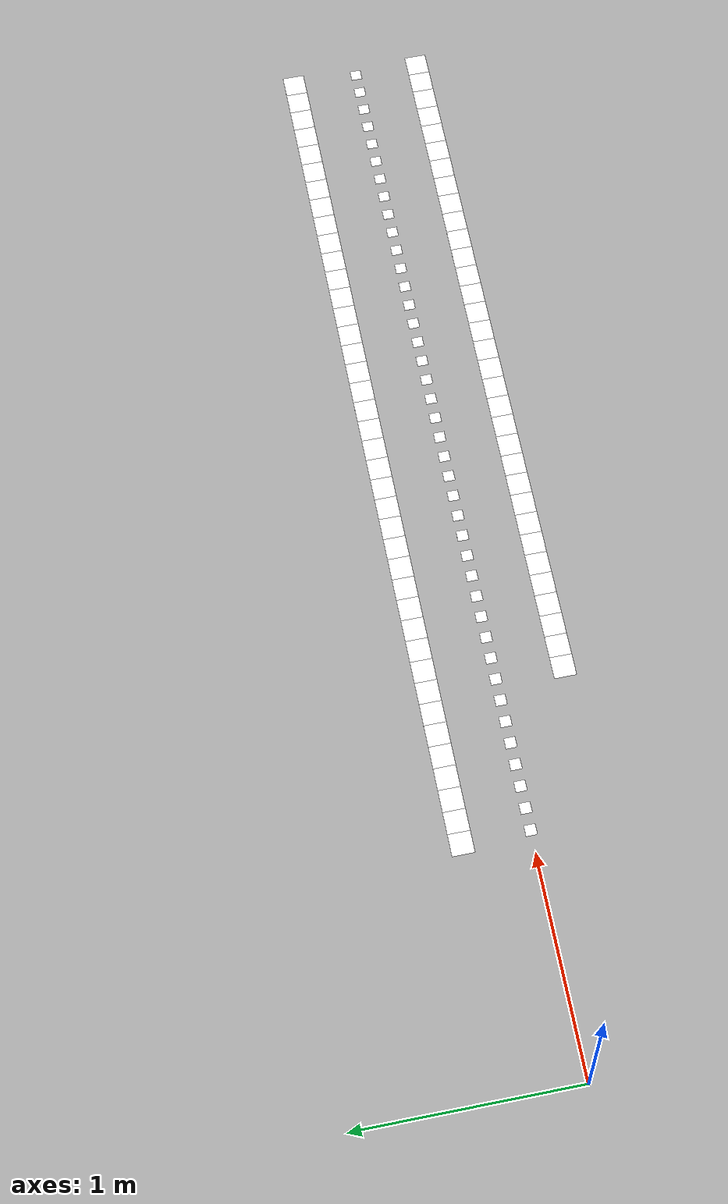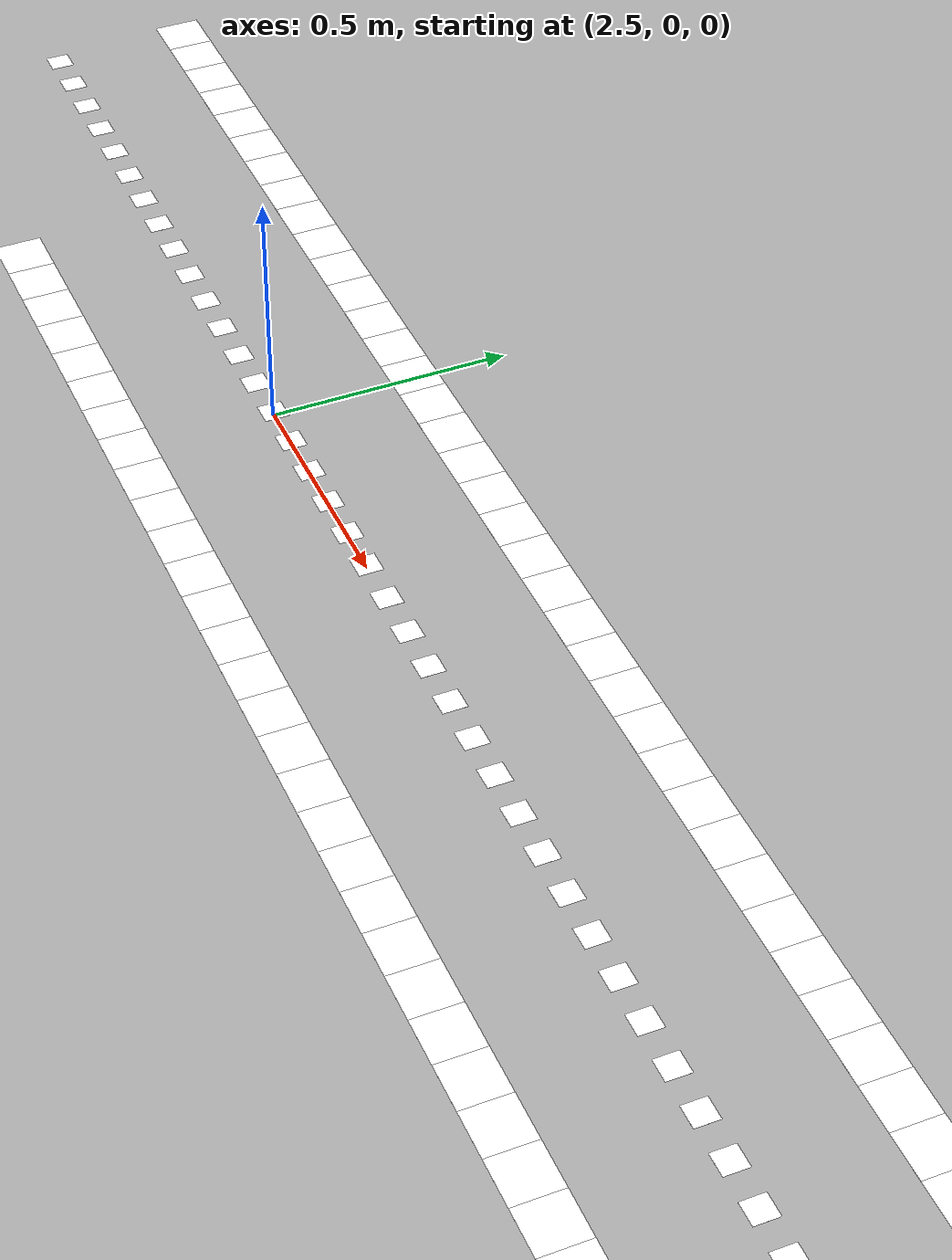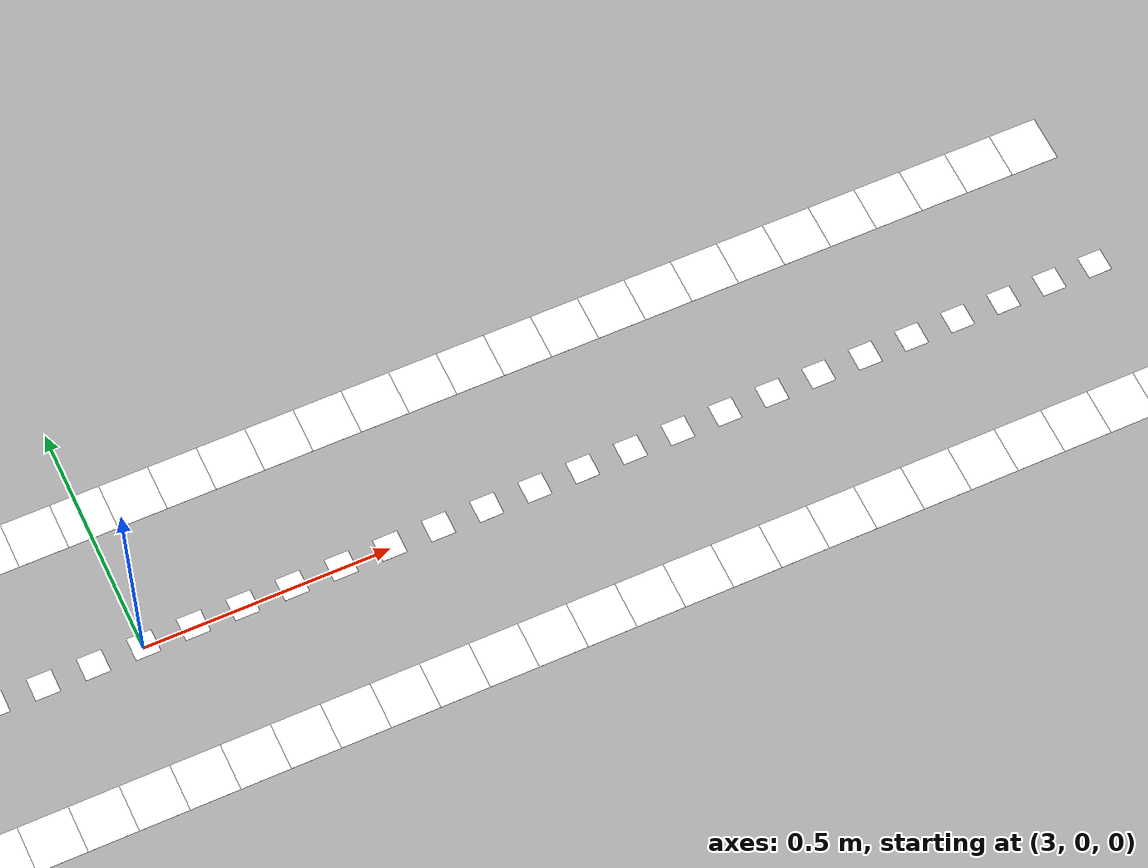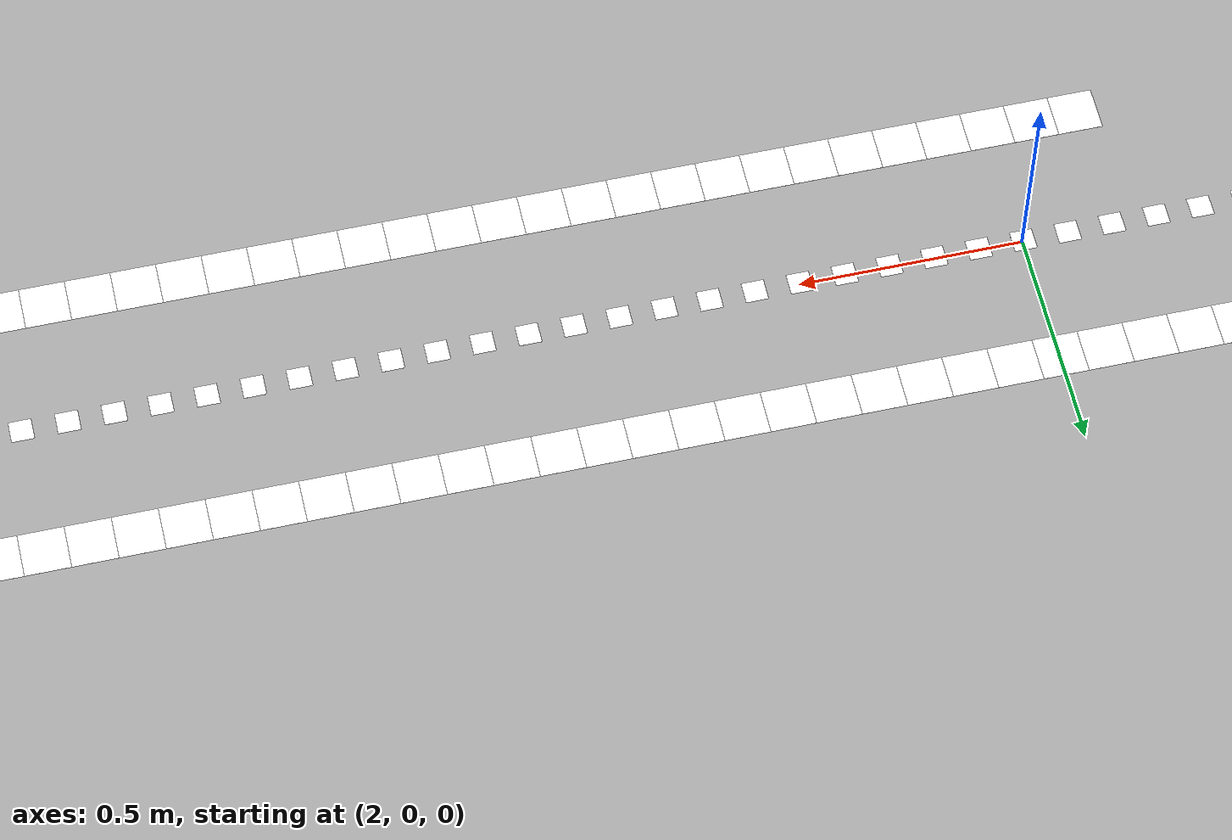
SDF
<sdf version="1.5">
 <model name="AutoNOMOS_mini_intersection">
  <static>true</static>
  <link name="L1_p11">
   <pose>1.1 0 .011 0 0 0</pose>
   <visual name="visual_L1_p11">
    <cast_shadows>false</cast_shadows>
    <geometry><plane><normal>0 0 1</normal><size>.05 .05</size></plane></geometry>
    <material>
     <ambient>0 0 0 0</ambient>
     <diffuse>1 1 1 0</diffuse>
     <specular>0 0 0 0</specular>
     <emissive>0 0 0 0</emissive>
    </material>
   </visual>
  </link>
  <link name="L2_p11">
   <pose>1.1 0.3 .011 0 0 0</pose>
   <visual name="visual_L2_p11">
    <cast_shadows>false</cast_shadows>
    <geometry><plane><normal>0 0 1</normal><size>.1 .1</size></plane></geometry>
    <material>
     <ambient>0 0 0 0</ambient>
     <diffuse>1 1 1 0</diffuse>
     <specular>0 0 0 0</specular>
     <emissive>0 0 0 0</emissive>
    </material>
   </visual>
  </link>
  <link name="L1_p12">
   <pose>1.2 0 .011 0 0 0</pose>
   <visual name="visual_L1_p12">
    <cast_shadows>false</cast_shadows>
    <geometry><plane><normal>0 0 1</normal><size>.05 .05</size></plane></geometry>
    <material>
     <ambient>0 0 0 0</ambient>
     <diffuse>1 1 1 0</diffuse>
     <specular>0 0 0 0</specular>
     <emissive>0 0 0 0</emissive>
    </material>
   </visual>
  </link>
  <link name="L2_p12">
   <pose>1.2 0.3 .011 0 0 0</pose>
   <visual name="visual_L2_p12">
    <cast_shadows>false</cast_shadows>
    <geometry><plane><normal>0 0 1</normal><size>.1 .1</size></plane></geometry>
    <material>
     <ambient>0 0 0 0</ambient>
     <diffuse>1 1 1 0</diffuse>
     <specular>0 0 0 0</specular>
     <emissive>0 0 0 0</emissive>
    </material>
   </visual>
  </link>
  <link name="L1_p13">
   <pose>1.3 0 .011 0 0 0</pose>
   <visual name="visual_L1_p13">
    <cast_shadows>false</cast_shadows>
    <geometry><plane><normal>0 0 1</normal><size>.05 .05</size></plane></geometry>
    <material>
     <ambient>0 0 0 0</ambient>
     <diffuse>1 1 1 0</diffuse>
     <specular>0 0 0 0</specular>
     <emissive>0 0 0 0</emissive>
    </material>
   </visual>
  </link>
  <link name="L2_p13">
   <pose>1.3 0.3 .011 0 0 0</pose>
   <visual name="visual_L2_p13">
    <cast_shadows>false</cast_shadows>
    <geometry><plane><normal>0 0 1</normal><size>.1 .1</size></plane></geometry>
    <material>
     <ambient>0 0 0 0</ambient>
     <diffuse>1 1 1 0</diffuse>
     <specular>0 0 0 0</specular>
     <emissive>0 0 0 0</emissive>
    </material>
   </visual>
  </link>
  <link name="L1_p14">
   <pose>1.4 0 .011 0 0 0</pose>
   <visual name="visual_L1_p14">
    <cast_shadows>false</cast_shadows>
    <geometry><plane><normal>0 0 1</normal><size>.05 .05</size></plane></geometry>
    <material>
     <ambient>0 0 0 0</ambient>
     <diffuse>1 1 1 0</diffuse>
     <specular>0 0 0 0</specular>
     <emissive>0 0 0 0</emissive>
    </material>
   </visual>
  </link>
  <link name="L2_p14">
   <pose>1.4 0.3 .011 0 0 0</pose>
   <visual name="visual_L2_p14">
    <cast_shadows>false</cast_shadows>
    <geometry><plane><normal>0 0 1</normal><size>.1 .1</size></plane></geometry>
    <material>
     <ambient>0 0 0 0</ambient>
     <diffuse>1 1 1 0</diffuse>
     <specular>0 0 0 0</specular>
     <emissive>0 0 0 0</emissive>
    </material>
   </visual>
  </link>
  <link name="L1_p15">
   <pose>1.5 0 .011 0 0 0</pose>
   <visual name="visual_L1_p15">
    <cast_shadows>false</cast_shadows>
    <geometry><plane><normal>0 0 1</normal><size>.05 .05</size></plane></geometry>
    <material>
     <ambient>0 0 0 0</ambient>
     <diffuse>1 1 1 0</diffuse>
     <specular>0 0 0 0</specular>
     <emissive>0 0 0 0</emissive>
    </material>
   </visual>
  </link>
  <link name="L2_p15">
   <pose>1.5 0.3 .011 0 0 0</pose>
   <visual name="visual_L2_p15">
    <cast_shadows>false</cast_shadows>
    <geometry><plane><normal>0 0 1</normal><size>.1 .1</size></plane></geometry>
    <material>
     <ambient>0 0 0 0</ambient>
     <diffuse>1 1 1 0</diffuse>
     <specular>0 0 0 0</specular>
     <emissive>0 0 0 0</emissive>
    </material>
   </visual>
  </link>
  <link name="L1_p16">
   <pose>1.6 0 .011 0 0 0</pose>
   <visual name="visual_L1_p16">
    <cast_shadows>false</cast_shadows>
    <geometry><plane><normal>0 0 1</normal><size>.05 .05</size></plane></geometry>
    <material>
     <ambient>0 0 0 0</ambient>
     <diffuse>1 1 1 0</diffuse>
     <specular>0 0 0 0</specular>
     <emissive>0 0 0 0</emissive>
    </material>
   </visual>
  </link>
  <link name="L2_p16">
   <pose>1.6 0.3 .011 0 0 0</pose>
   <visual name="visual_L2_p16">
    <cast_shadows>false</cast_shadows>
    <geometry><plane><normal>0 0 1</normal><size>.1 .1</size></plane></geometry>
    <material>
     <ambient>0 0 0 0</ambient>
     <diffuse>1 1 1 0</diffuse>
     <specular>0 0 0 0</specular>
     <emissive>0 0 0 0</emissive>
    </material>
   </visual>
  </link>
  <link name="L1_p17">
   <pose>1.7 0 .011 0 0 0</pose>
   <visual name="visual_L1_p17">
    <cast_shadows>false</cast_shadows>
    <geometry><plane><normal>0 0 1</normal><size>.05 .05</size></plane></geometry>
    <material>
     <ambient>0 0 0 0</ambient>
     <diffuse>1 1 1 0</diffuse>
     <specular>0 0 0 0</specular>
     <emissive>0 0 0 0</emissive>
    </material>
   </visual>
  </link>
  <link name="L2_p17">
   <pose>1.7 0.3 .011 0 0 0</pose>
   <visual name="visual_L2_p17">
    <cast_shadows>false</cast_shadows>
    <geometry><plane><normal>0 0 1</normal><size>.1 .1</size></plane></geometry>
    <material>
     <ambient>0 0 0 0</ambient>
     <diffuse>1 1 1 0</diffuse>
     <specular>0 0 0 0</specular>
     <emissive>0 0 0 0</emissive>
    </material>
   </visual>
  </link>
  <link name="L1_p18">
   <pose>1.8 0 .011 0 0 0</pose>
   <visual name="visual_L1_p18">
    <cast_shadows>false</cast_shadows>
    <geometry><plane><normal>0 0 1</normal><size>.05 .05</size></plane></geometry>
    <material>
     <ambient>0 0 0 0</ambient>
     <diffuse>1 1 1 0</diffuse>
     <specular>0 0 0 0</specular>
     <emissive>0 0 0 0</emissive>
    </material>
   </visual>
  </link>
  <link name="L2_p18">
   <pose>1.8 0.3 .011 0 0 0</pose>
   <visual name="visual_L2_p18">
    <cast_shadows>false</cast_shadows>
    <geometry><plane><normal>0 0 1</normal><size>.1 .1</size></plane></geometry>
    <material>
     <ambient>0 0 0 0</ambient>
     <diffuse>1 1 1 0</diffuse>
     <specular>0 0 0 0</specular>
     <emissive>0 0 0 0</emissive>
    </material>
   </visual>
  </link>
  <link name="L12_p18">
   <pose>1.8 -0.3 .011 0 0 0</pose>
   <visual name="visual_L12_p18">
    <cast_shadows>false</cast_shadows>
    <geometry><plane><normal>0 0 1</normal><size>.1 .1</size></plane></geometry>
    <material>
     <ambient>0 0 0 0</ambient>
     <diffuse>1 1 1 0</diffuse>
     <specular>0 0 0 0</specular>
     <emissive>0 0 0 0</emissive>
    </material>
   </visual>
  </link>
  <link name="L1_p19">
   <pose>1.9 0 .011 0 0 0</pose>
   <visual name="visual_L1_p19">
    <cast_shadows>false</cast_shadows>
    <geometry><plane><normal>0 0 1</normal><size>.05 .05</size></plane></geometry>
    <material>
     <ambient>0 0 0 0</ambient>
     <diffuse>1 1 1 0</diffuse>
     <specular>0 0 0 0</specular>
     <emissive>0 0 0 0</emissive>
    </material>
   </visual>
  </link>
  <link name="L2_p19">
   <pose>1.9 0.3 .011 0 0 0</pose>
   <visual name="visual_L2_p19">
    <cast_shadows>false</cast_shadows>
    <geometry><plane><normal>0 0 1</normal><size>.1 .1</size></plane></geometry>
    <material>
     <ambient>0 0 0 0</ambient>
     <diffuse>1 1 1 0</diffuse>
     <specular>0 0 0 0</specular>
     <emissive>0 0 0 0</emissive>
    </material>
   </visual>
  </link>
  <link name="L12_p19">
   <pose>1.9 -0.3 .011 0 0 0</pose>
   <visual name="visual_L12_p19">
    <cast_shadows>false</cast_shadows>
    <geometry><plane><normal>0 0 1</normal><size>.1 .1</size></plane></geometry>
    <material>
     <ambient>0 0 0 0</ambient>
     <diffuse>1 1 1 0</diffuse>
     <specular>0 0 0 0</specular>
     <emissive>0 0 0 0</emissive>
    </material>
   </visual>
  </link>
  <link name="L1_p20">
   <pose>2 0 .011 0 0 0</pose>
   <visual name="visual_L1_p20">
    <cast_shadows>false</cast_shadows>
    <geometry><plane><normal>0 0 1</normal><size>.05 .05</size></plane></geometry>
    <material>
     <ambient>0 0 0 0</ambient>
     <diffuse>1 1 1 0</diffuse>
     <specular>0 0 0 0</specular>
     <emissive>0 0 0 0</emissive>
    </material>
   </visual>
  </link>
  <link name="L2_p20">
   <pose>2 0.3 .011 0 0 0</pose>
   <visual name="visual_L2_p20">
    <cast_shadows>false</cast_shadows>
    <geometry><plane><normal>0 0 1</normal><size>.1 .1</size></plane></geometry>
    <material>
     <ambient>0 0 0 0</ambient>
     <diffuse>1 1 1 0</diffuse>
     <specular>0 0 0 0</specular>
     <emissive>0 0 0 0</emissive>
    </material>
   </visual>
  </link>
  <link name="L12_p20">
   <pose>2 -0.3 .011 0 0 0</pose>
   <visual name="visual_L12_p20">
    <cast_shadows>false</cast_shadows>
    <geometry><plane><normal>0 0 1</normal><size>.1 .1</size></plane></geometry>
    <material>
     <ambient>0 0 0 0</ambient>
     <diffuse>1 1 1 0</diffuse>
     <specular>0 0 0 0</specular>
     <emissive>0 0 0 0</emissive>
    </material>
   </visual>
  </link>
  <link name="L1_p21">
   <pose>2.1 0 .011 0 0 0</pose>
   <visual name="visual_L1_p21">
    <cast_shadows>false</cast_shadows>
    <geometry><plane><normal>0 0 1</normal><size>.05 .05</size></plane></geometry>
    <material>
     <ambient>0 0 0 0</ambient>
     <diffuse>1 1 1 0</diffuse>
     <specular>0 0 0 0</specular>
     <emissive>0 0 0 0</emissive>
    </material>
   </visual>
  </link>
  <link name="L2_p21">
   <pose>2.1 0.3 .011 0 0 0</pose>
   <visual name="visual_L2_p21">
    <cast_shadows>false</cast_shadows>
    <geometry><plane><normal>0 0 1</normal><size>.1 .1</size></plane></geometry>
    <material>
     <ambient>0 0 0 0</ambient>
     <diffuse>1 1 1 0</diffuse>
     <specular>0 0 0 0</specular>
     <emissive>0 0 0 0</emissive>
    </material>
   </visual>
  </link>
  <link name="L12_p21">
   <pose>2.1 -0.3 .011 0 0 0</pose>
   <visual name="visual_L12_p21">
    <cast_shadows>false</cast_shadows>
    <geometry><plane><normal>0 0 1</normal><size>.1 .1</size></plane></geometry>
    <material>
     <ambient>0 0 0 0</ambient>
     <diffuse>1 1 1 0</diffuse>
     <specular>0 0 0 0</specular>
     <emissive>0 0 0 0</emissive>
    </material>
   </visual>
  </link>
  <link name="L1_p22">
   <pose>2.2 0 .011 0 0 0</pose>
   <visual name="visual_L1_p22">
    <cast_shadows>false</cast_shadows>
    <geometry><plane><normal>0 0 1</normal><size>.05 .05</size></plane></geometry>
    <material>
     <ambient>0 0 0 0</ambient>
     <diffuse>1 1 1 0</diffuse>
     <specular>0 0 0 0</specular>
     <emissive>0 0 0 0</emissive>
    </material>
   </visual>
  </link>
  <link name="L2_p22">
   <pose>2.2 0.3 .011 0 0 0</pose>
   <visual name="visual_L2_p22">
    <cast_shadows>false</cast_shadows>
    <geometry><plane><normal>0 0 1</normal><size>.1 .1</size></plane></geometry>
    <material>
     <ambient>0 0 0 0</ambient>
     <diffuse>1 1 1 0</diffuse>
     <specular>0 0 0 0</specular>
     <emissive>0 0 0 0</emissive>
    </material>
   </visual>
  </link>
  <link name="L12_p22">
   <pose>2.2 -0.3 .011 0 0 0</pose>
   <visual name="visual_L12_p22">
    <cast_shadows>false</cast_shadows>
    <geometry><plane><normal>0 0 1</normal><size>.1 .1</size></plane></geometry>
    <material>
     <ambient>0 0 0 0</ambient>
     <diffuse>1 1 1 0</diffuse>
     <specular>0 0 0 0</specular>
     <emissive>0 0 0 0</emissive>
    </material>
   </visual>
  </link>
  <link name="L1_p23">
   <pose>2.3 0 .011 0 0 0</pose>
   <visual name="visual_L1_p23">
    <cast_shadows>false</cast_shadows>
    <geometry><plane><normal>0 0 1</normal><size>.05 .05</size></plane></geometry>
    <material>
     <ambient>0 0 0 0</ambient>
     <diffuse>1 1 1 0</diffuse>
     <specular>0 0 0 0</specular>
     <emissive>0 0 0 0</emissive>
    </material>
   </visual>
  </link>
  <link name="L2_p23">
   <pose>2.3 0.3 .011 0 0 0</pose>
   <visual name="visual_L2_p23">
    <cast_shadows>false</cast_shadows>
    <geometry><plane><normal>0 0 1</normal><size>.1 .1</size></plane></geometry>
    <material>
     <ambient>0 0 0 0</ambient>
     <diffuse>1 1 1 0</diffuse>
     <specular>0 0 0 0</specular>
     <emissive>0 0 0 0</emissive>
    </material>
   </visual>
  </link>
  <link name="L12_p23">
   <pose>2.3 -0.3 .011 0 0 0</pose>
   <visual name="visual_L12_p23">
    <cast_shadows>false</cast_shadows>
    <geometry><plane><normal>0 0 1</normal><size>.1 .1</size></plane></geometry>
    <material>
     <ambient>0 0 0 0</ambient>
     <diffuse>1 1 1 0</diffuse>
     <specular>0 0 0 0</specular>
     <emissive>0 0 0 0</emissive>
    </material>
   </visual>
  </link>
  <link name="L1_p24">
   <pose>2.4 0 .011 0 0 0</pose>
   <visual name="visual_L1_p24">
    <cast_shadows>false</cast_shadows>
    <geometry><plane><normal>0 0 1</normal><size>.05 .05</size></plane></geometry>
    <material>
     <ambient>0 0 0 0</ambient>
     <diffuse>1 1 1 0</diffuse>
     <specular>0 0 0 0</specular>
     <emissive>0 0 0 0</emissive>
    </material>
   </visual>
  </link>
  <link name="L2_p24">
   <pose>2.4 0.3 .011 0 0 0</pose>
   <visual name="visual_L2_p24">
    <cast_shadows>false</cast_shadows>
    <geometry><plane><normal>0 0 1</normal><size>.1 .1</size></plane></geometry>
    <material>
     <ambient>0 0 0 0</ambient>
     <diffuse>1 1 1 0</diffuse>
     <specular>0 0 0 0</specular>
     <emissive>0 0 0 0</emissive>
    </material>
   </visual>
  </link>
  <link name="L12_p24">
   <pose>2.4 -0.3 .011 0 0 0</pose>
   <visual name="visual_L12_p24">
    <cast_shadows>false</cast_shadows>
    <geometry><plane><normal>0 0 1</normal><size>.1 .1</size></plane></geometry>
    <material>
     <ambient>0 0 0 0</ambient>
     <diffuse>1 1 1 0</diffuse>
     <specular>0 0 0 0</specular>
     <emissive>0 0 0 0</emissive>
    </material>
   </visual>
  </link>
  <link name="L1_p25">
   <pose>2.5 0 .011 0 0 0</pose>
   <visual name="visual_L1_p25">
    <cast_shadows>false</cast_shadows>
    <geometry><plane><normal>0 0 1</normal><size>.05 .05</size></plane></geometry>
    <material>
     <ambient>0 0 0 0</ambient>
     <diffuse>1 1 1 0</diffuse>
     <specular>0 0 0 0</specular>
     <emissive>0 0 0 0</emissive>
    </material>
   </visual>
  </link>
  <link name="L2_p25">
   <pose>2.5 0.3 .011 0 0 0</pose>
   <visual name="visual_L2_p25">
    <cast_shadows>false</cast_shadows>
    <geometry><plane><normal>0 0 1</normal><size>.1 .1</size></plane></geometry>
    <material>
     <ambient>0 0 0 0</ambient>
     <diffuse>1 1 1 0</diffuse>
     <specular>0 0 0 0</specular>
     <emissive>0 0 0 0</emissive>
    </material>
   </visual>
  </link>
  <link name="L12_p25">
   <pose>2.5 -0.3 .011 0 0 0</pose>
   <visual name="visual_L12_p25">
    <cast_shadows>false</cast_shadows>
    <geometry><plane><normal>0 0 1</normal><size>.1 .1</size></plane></geometry>
    <material>
     <ambient>0 0 0 0</ambient>
     <diffuse>1 1 1 0</diffuse>
     <specular>0 0 0 0</specular>
     <emissive>0 0 0 0</emissive>
    </material>
   </visual>
  </link>
  <link name="L1_p26">
   <pose>2.6 0 .011 0 0 0</pose>
   <visual name="visual_L1_p26">
    <cast_shadows>false</cast_shadows>
    <geometry><plane><normal>0 0 1</normal><size>.05 .05</size></plane></geometry>
    <material>
     <ambient>0 0 0 0</ambient>
     <diffuse>1 1 1 0</diffuse>
     <specular>0 0 0 0</specular>
     <emissive>0 0 0 0</emissive>
    </material>
   </visual>
  </link>
  <link name="L2_p26">
   <pose>2.6 0.3 .011 0 0 0</pose>
   <visual name="visual_L2_p26">
    <cast_shadows>false</cast_shadows>
    <geometry><plane><normal>0 0 1</normal><size>.1 .1</size></plane></geometry>
    <material>
     <ambient>0 0 0 0</ambient>
     <diffuse>1 1 1 0</diffuse>
     <specular>0 0 0 0</specular>
     <emissive>0 0 0 0</emissive>
    </material>
   </visual>
  </link>
  <link name="L12_p26">
   <pose>2.6 -0.3 .011 0 0 0</pose>
   <visual name="visual_L12_p26">
    <cast_shadows>false</cast_shadows>
    <geometry><plane><normal>0 0 1</normal><size>.1 .1</size></plane></geometry>
    <material>
     <ambient>0 0 0 0</ambient>
     <diffuse>1 1 1 0</diffuse>
     <specular>0 0 0 0</specular>
     <emissive>0 0 0 0</emissive>
    </material>
   </visual>
  </link>
  <link name="L1_p27">
   <pose>2.7 0 .011 0 0 0</pose>
   <visual name="visual_L1_p27">
    <cast_shadows>false</cast_shadows>
    <geometry><plane><normal>0 0 1</normal><size>.05 .05</size></plane></geometry>
    <material>
     <ambient>0 0 0 0</ambient>
     <diffuse>1 1 1 0</diffuse>
     <specular>0 0 0 0</specular>
     <emissive>0 0 0 0</emissive>
    </material>
   </visual>
  </link>
  <link name="L2_p27">
   <pose>2.7 0.3 .011 0 0 0</pose>
   <visual name="visual_L2_p27">
    <cast_shadows>false</cast_shadows>
    <geometry><plane><normal>0 0 1</normal><size>.1 .1</size></plane></geometry>
    <material>
     <ambient>0 0 0 0</ambient>
     <diffuse>1 1 1 0</diffuse>
     <specular>0 0 0 0</specular>
     <emissive>0 0 0 0</emissive>
    </material>
   </visual>
  </link>
  <link name="L12_p27">
   <pose>2.7 -0.3 .011 0 0 0</pose>
   <visual name="visual_L12_p27">
    <cast_shadows>false</cast_shadows>
    <geometry><plane><normal>0 0 1</normal><size>.1 .1</size></plane></geometry>
    <material>
     <ambient>0 0 0 0</ambient>
     <diffuse>1 1 1 0</diffuse>
     <specular>0 0 0 0</specular>
     <emissive>0 0 0 0</emissive>
    </material>
   </visual>
  </link>
  <link name="L1_p28">
   <pose>2.8 0 .011 0 0 0</pose>
   <visual name="visual_L1_p28">
    <cast_shadows>false</cast_shadows>
    <geometry><plane><normal>0 0 1</normal><size>.05 .05</size></plane></geometry>
    <material>
     <ambient>0 0 0 0</ambient>
     <diffuse>1 1 1 0</diffuse>
     <specular>0 0 0 0</specular>
     <emissive>0 0 0 0</emissive>
    </material>
   </visual>
  </link>
  <link name="L2_p28">
   <pose>2.8 0.3 .011 0 0 0</pose>
   <visual name="visual_L2_p28">
    <cast_shadows>false</cast_shadows>
    <geometry><plane><normal>0 0 1</normal><size>.1 .1</size></plane></geometry>
    <material>
     <ambient>0 0 0 0</ambient>
     <diffuse>1 1 1 0</diffuse>
     <specular>0 0 0 0</specular>
     <emissive>0 0 0 0</emissive>
    </material>
   </visual>
  </link>
  <link name="L12_p28">
   <pose>2.8 -0.3 .011 0 0 0</pose>
   <visual name="visual_L12_p28">
    <cast_shadows>false</cast_shadows>
    <geometry><plane><normal>0 0 1</normal><size>.1 .1</size></plane></geometry>
    <material>
     <ambient>0 0 0 0</ambient>
     <diffuse>1 1 1 0</diffuse>
     <specular>0 0 0 0</specular>
     <emissive>0 0 0 0</emissive>
    </material>
   </visual>
  </link>
  <link name="L1_p29">
   <pose>2.9 0 .011 0 0 0</pose>
   <visual name="visual_L1_p29">
    <cast_shadows>false</cast_shadows>
    <geometry><plane><normal>0 0 1</normal><size>.05 .05</size></plane></geometry>
    <material>
     <ambient>0 0 0 0</ambient>
     <diffuse>1 1 1 0</diffuse>
     <specular>0 0 0 0</specular>
     <emissive>0 0 0 0</emissive>
    </material>
   </visual>
  </link>
  <link name="L2_p29">
   <pose>2.9 0.3 .011 0 0 0</pose>
   <visual name="visual_L2_p29">
    <cast_shadows>false</cast_shadows>
    <geometry><plane><normal>0 0 1</normal><size>.1 .1</size></plane></geometry>
    <material>
     <ambient>0 0 0 0</ambient>
     <diffuse>1 1 1 0</diffuse>
     <specular>0 0 0 0</specular>
     <emissive>0 0 0 0</emissive>
    </material>
   </visual>
  </link>
  <link name="L12_p29">
   <pose>2.9 -0.3 .011 0 0 0</pose>
   <visual name="visual_L12_p29">
    <cast_shadows>false</cast_shadows>
    <geometry><plane><normal>0 0 1</normal><size>.1 .1</size></plane></geometry>
    <material>
     <ambient>0 0 0 0</ambient>
     <diffuse>1 1 1 0</diffuse>
     <specular>0 0 0 0</specular>
     <emissive>0 0 0 0</emissive>
    </material>
   </visual>
  </link>
  <link name="L1_p30">
   <pose>3 0 .011 0 0 0</pose>
   <visual name="visual_L1_p30">
    <cast_shadows>false</cast_shadows>
    <geometry><plane><normal>0 0 1</normal><size>.05 .05</size></plane></geometry>
    <material>
     <ambient>0 0 0 0</ambient>
     <diffuse>1 1 1 0</diffuse>
     <specular>0 0 0 0</specular>
     <emissive>0 0 0 0</emissive>
    </material>
   </visual>
  </link>
  <link name="L2_p30">
   <pose>3 0.3 .011 0 0 0</pose>
   <visual name="visual_L2_p30">
    <cast_shadows>false</cast_shadows>
    <geometry><plane><normal>0 0 1</normal><size>.1 .1</size></plane></geometry>
    <material>
     <ambient>0 0 0 0</ambient>
     <diffuse>1 1 1 0</diffuse>
     <specular>0 0 0 0</specular>
     <emissive>0 0 0 0</emissive>
    </material>
   </visual>
  </link>
  <link name="L12_p30">
   <pose>3 -0.3 .011 0 0 0</pose>
   <visual name="visual_L12_p30">
    <cast_shadows>false</cast_shadows>
    <geometry><plane><normal>0 0 1</normal><size>.1 .1</size></plane></geometry>
    <material>
     <ambient>0 0 0 0</ambient>
     <diffuse>1 1 1 0</diffuse>
     <specular>0 0 0 0</specular>
     <emissive>0 0 0 0</emissive>
    </material>
   </visual>
  </link>
  <link name="L1_p31">
   <pose>3.1 0 .011 0 0 0</pose>
   <visual name="visual_L1_p31">
    <cast_shadows>false</cast_shadows>
    <geometry><plane><normal>0 0 1</normal><size>.05 .05</size></plane></geometry>
    <material>
     <ambient>0 0 0 0</ambient>
     <diffuse>1 1 1 0</diffuse>
     <specular>0 0 0 0</specular>
     <emissive>0 0 0 0</emissive>
    </material>
   </visual>
  </link>
  <link name="L2_p31">
   <pose>3.1 0.3 .011 0 0 0</pose>
   <visual name="visual_L2_p31">
    <cast_shadows>false</cast_shadows>
    <geometry><plane><normal>0 0 1</normal><size>.1 .1</size></plane></geometry>
    <material>
     <ambient>0 0 0 0</ambient>
     <diffuse>1 1 1 0</diffuse>
     <specular>0 0 0 0</specular>
     <emissive>0 0 0 0</emissive>
    </material>
   </visual>
  </link>
  <link name="L12_p31">
   <pose>3.1 -0.3 .011 0 0 0</pose>
   <visual name="visual_L12_p31">
    <cast_shadows>false</cast_shadows>
    <geometry><plane><normal>0 0 1</normal><size>.1 .1</size></plane></geometry>
    <material>
     <ambient>0 0 0 0</ambient>
     <diffuse>1 1 1 0</diffuse>
     <specular>0 0 0 0</specular>
     <emissive>0 0 0 0</emissive>
    </material>
   </visual>
  </link>
  <link name="L1_p32">
   <pose>3.2 0 .011 0 0 0</pose>
   <visual name="visual_L1_p32">
    <cast_shadows>false</cast_shadows>
    <geometry><plane><normal>0 0 1</normal><size>.05 .05</size></plane></geometry>
    <material>
     <ambient>0 0 0 0</ambient>
     <diffuse>1 1 1 0</diffuse>
     <specular>0 0 0 0</specular>
     <emissive>0 0 0 0</emissive>
    </material>
   </visual>
  </link>
  <link name="L2_p32">
   <pose>3.2 0.3 .011 0 0 0</pose>
   <visual name="visual_L2_p32">
    <cast_shadows>false</cast_shadows>
    <geometry><plane><normal>0 0 1</normal><size>.1 .1</size></plane></geometry>
    <material>
     <ambient>0 0 0 0</ambient>
     <diffuse>1 1 1 0</diffuse>
     <specular>0 0 0 0</specular>
     <emissive>0 0 0 0</emissive>
    </material>
   </visual>
  </link>
  <link name="L12_p32">
   <pose>3.2 -0.3 .011 0 0 0</pose>
   <visual name="visual_L12_p32">
    <cast_shadows>false</cast_shadows>
    <geometry><plane><normal>0 0 1</normal><size>.1 .1</size></plane></geometry>
    <material>
     <ambient>0 0 0 0</ambient>
     <diffuse>1 1 1 0</diffuse>
     <specular>0 0 0 0</specular>
     <emissive>0 0 0 0</emissive>
    </material>
   </visual>
  </link>
  <link name="L1_p33">
   <pose>3.3 0 .011 0 0 0</pose>
   <visual name="visual_L1_p33">
    <cast_shadows>false</cast_shadows>
    <geometry><plane><normal>0 0 1</normal><size>.05 .05</size></plane></geometry>
    <material>
     <ambient>0 0 0 0</ambient>
     <diffuse>1 1 1 0</diffuse>
     <specular>0 0 0 0</specular>
     <emissive>0 0 0 0</emissive>
    </material>
   </visual>
  </link>
  <link name="L2_p33">
   <pose>3.3 0.3 .011 0 0 0</pose>
   <visual name="visual_L2_p33">
    <cast_shadows>false</cast_shadows>
    <geometry><plane><normal>0 0 1</normal><size>.1 .1</size></plane></geometry>
    <material>
     <ambient>0 0 0 0</ambient>
     <diffuse>1 1 1 0</diffuse>
     <specular>0 0 0 0</specular>
     <emissive>0 0 0 0</emissive>
    </material>
   </visual>
  </link>
  <link name="L12_p33">
   <pose>3.3 -0.3 .011 0 0 0</pose>
   <visual name="visual_L12_p33">
    <cast_shadows>false</cast_shadows>
    <geometry><plane><normal>0 0 1</normal><size>.1 .1</size></plane></geometry>
    <material>
     <ambient>0 0 0 0</ambient>
     <diffuse>1 1 1 0</diffuse>
     <specular>0 0 0 0</specular>
     <emissive>0 0 0 0</emissive>
    </material>
   </visual>
  </link>
  <link name="L1_p34">
   <pose>3.4 0 .011 0 0 0</pose>
   <visual name="visual_L1_p34">
    <cast_shadows>false</cast_shadows>
    <geometry><plane><normal>0 0 1</normal><size>.05 .05</size></plane></geometry>
    <material>
     <ambient>0 0 0 0</ambient>
     <diffuse>1 1 1 0</diffuse>
     <specular>0 0 0 0</specular>
     <emissive>0 0 0 0</emissive>
    </material>
   </visual>
  </link>
  <link name="L2_p34">
   <pose>3.4 0.3 .011 0 0 0</pose>
   <visual name="visual_L2_p34">
    <cast_shadows>false</cast_shadows>
    <geometry><plane><normal>0 0 1</normal><size>.1 .1</size></plane></geometry>
    <material>
     <ambient>0 0 0 0</ambient>
     <diffuse>1 1 1 0</diffuse>
     <specular>0 0 0 0</specular>
     <emissive>0 0 0 0</emissive>
    </material>
   </visual>
  </link>
  <link name="L12_p34">
   <pose>3.4 -0.3 .011 0 0 0</pose>
   <visual name="visual_L12_p34">
    <cast_shadows>false</cast_shadows>
    <geometry><plane><normal>0 0 1</normal><size>.1 .1</size></plane></geometry>
    <material>
     <ambient>0 0 0 0</ambient>
     <diffuse>1 1 1 0</diffuse>
     <specular>0 0 0 0</specular>
     <emissive>0 0 0 0</emissive>
    </material>
   </visual>
  </link>
  <link name="L1_p35">
   <pose>3.5 0 .011 0 0 0</pose>
   <visual name="visual_L1_p35">
    <cast_shadows>false</cast_shadows>
    <geometry><plane><normal>0 0 1</normal><size>.05 .05</size></plane></geometry>
    <material>
     <ambient>0 0 0 0</ambient>
     <diffuse>1 1 1 0</diffuse>
     <specular>0 0 0 0</specular>
     <emissive>0 0 0 0</emissive>
    </material>
   </visual>
  </link>
  <link name="L2_p35">
   <pose>3.5 0.3 .011 0 0 0</pose>
   <visual name="visual_L2_p35">
    <cast_shadows>false</cast_shadows>
    <geometry><plane><normal>0 0 1</normal><size>.1 .1</size></plane></geometry>
    <material>
     <ambient>0 0 0 0</ambient>
     <diffuse>1 1 1 0</diffuse>
     <specular>0 0 0 0</specular>
     <emissive>0 0 0 0</emissive>
    </material>
   </visual>
  </link>
  <link name="L12_p35">
   <pose>3.5 -0.3 .011 0 0 0</pose>
   <visual name="visual_L12_p35">
    <cast_shadows>false</cast_shadows>
    <geometry><plane><normal>0 0 1</normal><size>.1 .1</size></plane></geometry>
    <material>
     <ambient>0 0 0 0</ambient>
     <diffuse>1 1 1 0</diffuse>
     <specular>0 0 0 0</specular>
     <emissive>0 0 0 0</emissive>
    </material>
   </visual>
  </link>
  <link name="L1_p36">
   <pose>3.6 0 .011 0 0 0</pose>
   <visual name="visual_L1_p36">
    <cast_shadows>false</cast_shadows>
    <geometry><plane><normal>0 0 1</normal><size>.05 .05</size></plane></geometry>
    <material>
     <ambient>0 0 0 0</ambient>
     <diffuse>1 1 1 0</diffuse>
     <specular>0 0 0 0</specular>
     <emissive>0 0 0 0</emissive>
    </material>
   </visual>
  </link>
  <link name="L2_p36">
   <pose>3.6 0.3 .011 0 0 0</pose>
   <visual name="visual_L2_p36">
    <cast_shadows>false</cast_shadows>
    <geometry><plane><normal>0 0 1</normal><size>.1 .1</size></plane></geometry>
    <material>
     <ambient>0 0 0 0</ambient>
     <diffuse>1 1 1 0</diffuse>
     <specular>0 0 0 0</specular>
     <emissive>0 0 0 0</emissive>
    </material>
   </visual>
  </link>
  <link name="L12_p36">
   <pose>3.6 -0.3 .011 0 0 0</pose>
   <visual name="visual_L12_p36">
    <cast_shadows>false</cast_shadows>
    <geometry><plane><normal>0 0 1</normal><size>.1 .1</size></plane></geometry>
    <material>
     <ambient>0 0 0 0</ambient>
     <diffuse>1 1 1 0</diffuse>
     <specular>0 0 0 0</specular>
     <emissive>0 0 0 0</emissive>
    </material>
   </visual>
  </link>
  <link name="L1_p37">
   <pose>3.7 0 .011 0 0 0</pose>
   <visual name="visual_L1_p37">
    <cast_shadows>false</cast_shadows>
    <geometry><plane><normal>0 0 1</normal><size>.05 .05</size></plane></geometry>
    <material>
     <ambient>0 0 0 0</ambient>
     <diffuse>1 1 1 0</diffuse>
     <specular>0 0 0 0</specular>
     <emissive>0 0 0 0</emissive>
    </material>
   </visual>
  </link>
  <link name="L2_p37">
   <pose>3.7 0.3 .011 0 0 0</pose>
   <visual name="visual_L2_p37">
    <cast_shadows>false</cast_shadows>
    <geometry><plane><normal>0 0 1</normal><size>.1 .1</size></plane></geometry>
    <material>
     <ambient>0 0 0 0</ambient>
     <diffuse>1 1 1 0</diffuse>
     <specular>0 0 0 0</specular>
     <emissive>0 0 0 0</emissive>
    </material>
   </visual>
  </link>
  <link name="L12_p37">
   <pose>3.7 -0.3 .011 0 0 0</pose>
   <visual name="visual_L12_p37">
    <cast_shadows>false</cast_shadows>
    <geometry><plane><normal>0 0 1</normal><size>.1 .1</size></plane></geometry>
    <material>
     <ambient>0 0 0 0</ambient>
     <diffuse>1 1 1 0</diffuse>
     <specular>0 0 0 0</specular>
     <emissive>0 0 0 0</emissive>
    </material>
   </visual>
  </link>
  <link name="L1_p38">
   <pose>3.8 0 .011 0 0 0</pose>
   <visual name="visual_L1_p38">
    <cast_shadows>false</cast_shadows>
    <geometry><plane><normal>0 0 1</normal><size>.05 .05</size></plane></geometry>
    <material>
     <ambient>0 0 0 0</ambient>
     <diffuse>1 1 1 0</diffuse>
     <specular>0 0 0 0</specular>
     <emissive>0 0 0 0</emissive>
    </material>
   </visual>
  </link>
  <link name="L2_p38">
   <pose>3.8 0.3 .011 0 0 0</pose>
   <visual name="visual_L2_p38">
    <cast_shadows>false</cast_shadows>
    <geometry><plane><normal>0 0 1</normal><size>.1 .1</size></plane></geometry>
    <material>
     <ambient>0 0 0 0</ambient>
     <diffuse>1 1 1 0</diffuse>
     <specular>0 0 0 0</specular>
     <emissive>0 0 0 0</emissive>
    </material>
   </visual>
  </link>
  <link name="L12_p38">
   <pose>3.8 -0.3 .011 0 0 0</pose>
   <visual name="visual_L12_p38">
    <cast_shadows>false</cast_shadows>
    <geometry><plane><normal>0 0 1</normal><size>.1 .1</size></plane></geometry>
    <material>
     <ambient>0 0 0 0</ambient>
     <diffuse>1 1 1 0</diffuse>
     <specular>0 0 0 0</specular>
     <emissive>0 0 0 0</emissive>
    </material>
   </visual>
  </link>
  <link name="L1_p39">
   <pose>3.9 0 .011 0 0 0</pose>
   <visual name="visual_L1_p39">
    <cast_shadows>false</cast_shadows>
    <geometry><plane><normal>0 0 1</normal><size>.05 .05</size></plane></geometry>
    <material>
     <ambient>0 0 0 0</ambient>
     <diffuse>1 1 1 0</diffuse>
     <specular>0 0 0 0</specular>
     <emissive>0 0 0 0</emissive>
    </material>
   </visual>
  </link>
  <link name="L2_p39">
   <pose>3.9 0.3 .011 0 0 0</pose>
   <visual name="visual_L2_p39">
    <cast_shadows>false</cast_shadows>
    <geometry><plane><normal>0 0 1</normal><size>.1 .1</size></plane></geometry>
    <material>
     <ambient>0 0 0 0</ambient>
     <diffuse>1 1 1 0</diffuse>
     <specular>0 0 0 0</specular>
     <emissive>0 0 0 0</emissive>
    </material>
   </visual>
  </link>
  <link name="L12_p39">
   <pose>3.9 -0.3 .011 0 0 0</pose>
   <visual name="visual_L12_p39">
    <cast_shadows>false</cast_shadows>
    <geometry><plane><normal>0 0 1</normal><size>.1 .1</size></plane></geometry>
    <material>
     <ambient>0 0 0 0</ambient>
     <diffuse>1 1 1 0</diffuse>
     <specular>0 0 0 0</specular>
     <emissive>0 0 0 0</emissive>
    </material>
   </visual>
  </link>
  <link name="L1_p40">
   <pose>4 0 .011 0 0 0</pose>
   <visual name="visual_L1_p40">
    <cast_shadows>false</cast_shadows>
    <geometry><plane><normal>0 0 1</normal><size>.05 .05</size></plane></geometry>
    <material>
     <ambient>0 0 0 0</ambient>
     <diffuse>1 1 1 0</diffuse>
     <specular>0 0 0 0</specular>
     <emissive>0 0 0 0</emissive>
    </material>
   </visual>
  </link>
  <link name="L2_p40">
   <pose>4 0.3 .011 0 0 0</pose>
   <visual name="visual_L2_p40">
    <cast_shadows>false</cast_shadows>
    <geometry><plane><normal>0 0 1</normal><size>.1 .1</size></plane></geometry>
    <material>
     <ambient>0 0 0 0</ambient>
     <diffuse>1 1 1 0</diffuse>
     <specular>0 0 0 0</specular>
     <emissive>0 0 0 0</emissive>
    </material>
   </visual>
  </link>
  <link name="L12_p40">
   <pose>4 -0.3 .011 0 0 0</pose>
   <visual name="visual_L12_p40">
    <cast_shadows>false</cast_shadows>
    <geometry><plane><normal>0 0 1</normal><size>.1 .1</size></plane></geometry>
    <material>
     <ambient>0 0 0 0</ambient>
     <diffuse>1 1 1 0</diffuse>
     <specular>0 0 0 0</specular>
     <emissive>0 0 0 0</emissive>
    </material>
   </visual>
  </link>
  <link name="L1_p41">
   <pose>4.1 0 .011 0 0 0</pose>
   <visual name="visual_L1_p41">
    <cast_shadows>false</cast_shadows>
    <geometry><plane><normal>0 0 1</normal><size>.05 .05</size></plane></geometry>
    <material>
     <ambient>0 0 0 0</ambient>
     <diffuse>1 1 1 0</diffuse>
     <specular>0 0 0 0</specular>
     <emissive>0 0 0 0</emissive>
    </material>
   </visual>
  </link>
  <link name="L2_p41">
   <pose>4.1 0.3 .011 0 0 0</pose>
   <visual name="visual_L2_p41">
    <cast_shadows>false</cast_shadows>
    <geometry><plane><normal>0 0 1</normal><size>.1 .1</size></plane></geometry>
    <material>
     <ambient>0 0 0 0</ambient>
     <diffuse>1 1 1 0</diffuse>
     <specular>0 0 0 0</specular>
     <emissive>0 0 0 0</emissive>
    </material>
   </visual>
  </link>
  <link name="L12_p41">
   <pose>4.1 -0.3 .011 0 0 0</pose>
   <visual name="visual_L12_p41">
    <cast_shadows>false</cast_shadows>
    <geometry><plane><normal>0 0 1</normal><size>.1 .1</size></plane></geometry>
    <material>
     <ambient>0 0 0 0</ambient>
     <diffuse>1 1 1 0</diffuse>
     <specular>0 0 0 0</specular>
     <emissive>0 0 0 0</emissive>
    </material>
   </visual>
  </link>
  <link name="L1_p42">
   <pose>4.2 0 .011 0 0 0</pose>
   <visual name="visual_L1_p42">
    <cast_shadows>false</cast_shadows>
    <geometry><plane><normal>0 0 1</normal><size>.05 .05</size></plane></geometry>
    <material>
     <ambient>0 0 0 0</ambient>
     <diffuse>1 1 1 0</diffuse>
     <specular>0 0 0 0</specular>
     <emissive>0 0 0 0</emissive>
    </material>
   </visual>
  </link>
  <link name="L2_p42">
   <pose>4.2 0.3 .011 0 0 0</pose>
   <visual name="visual_L2_p42">
    <cast_shadows>false</cast_shadows>
    <geometry><plane><normal>0 0 1</normal><size>.1 .1</size></plane></geometry>
    <material>
     <ambient>0 0 0 0</ambient>
     <diffuse>1 1 1 0</diffuse>
     <specular>0 0 0 0</specular>
     <emissive>0 0 0 0</emissive>
    </material>
   </visual>
  </link>
  <link name="L12_p42">
   <pose>4.2 -0.3 .011 0 0 0</pose>
   <visual name="visual_L12_p42">
    <cast_shadows>false</cast_shadows>
    <geometry><plane><normal>0 0 1</normal><size>.1 .1</size></plane></geometry>
    <material>
     <ambient>0 0 0 0</ambient>
     <diffuse>1 1 1 0</diffuse>
     <specular>0 0 0 0</specular>
     <emissive>0 0 0 0</emissive>
    </material>
   </visual>
  </link>
  <link name="L1_p43">
   <pose>4.3 0 .011 0 0 0</pose>
   <visual name="visual_L1_p43">
    <cast_shadows>false</cast_shadows>
    <geometry><plane><normal>0 0 1</normal><size>.05 .05</size></plane></geometry>
    <material>
     <ambient>0 0 0 0</ambient>
     <diffuse>1 1 1 0</diffuse>
     <specular>0 0 0 0</specular>
     <emissive>0 0 0 0</emissive>
    </material>
   </visual>
  </link>
  <link name="L2_p43">
   <pose>4.3 0.3 .011 0 0 0</pose>
   <visual name="visual_L2_p43">
    <cast_shadows>false</cast_shadows>
    <geometry><plane><normal>0 0 1</normal><size>.1 .1</size></plane></geometry>
    <material>
     <ambient>0 0 0 0</ambient>
     <diffuse>1 1 1 0</diffuse>
     <specular>0 0 0 0</specular>
     <emissive>0 0 0 0</emissive>
    </material>
   </visual>
  </link>
  <link name="L12_p43">
   <pose>4.3 -0.3 .011 0 0 0</pose>
   <visual name="visual_L12_p43">
    <cast_shadows>false</cast_shadows>
    <geometry><plane><normal>0 0 1</normal><size>.1 .1</size></plane></geometry>
    <material>
     <ambient>0 0 0 0</ambient>
     <diffuse>1 1 1 0</diffuse>
     <specular>0 0 0 0</specular>
     <emissive>0 0 0 0</emissive>
    </material>
   </visual>
  </link>
  <link name="L1_p44">
   <pose>4.4 0 .011 0 0 0</pose>
   <visual name="visual_L1_p44">
    <cast_shadows>false</cast_shadows>
    <geometry><plane><normal>0 0 1</normal><size>.05 .05</size></plane></geometry>
    <material>
     <ambient>0 0 0 0</ambient>
     <diffuse>1 1 1 0</diffuse>
     <specular>0 0 0 0</specular>
     <emissive>0 0 0 0</emissive>
    </material>
   </visual>
  </link>
  <link name="L2_p44">
   <pose>4.4 0.3 .011 0 0 0</pose>
   <visual name="visual_L2_p44">
    <cast_shadows>false</cast_shadows>
    <geometry><plane><normal>0 0 1</normal><size>.1 .1</size></plane></geometry>
    <material>
     <ambient>0 0 0 0</ambient>
     <diffuse>1 1 1 0</diffuse>
     <specular>0 0 0 0</specular>
     <emissive>0 0 0 0</emissive>
    </material>
   </visual>
  </link>
  <link name="L12_p44">
   <pose>4.4 -0.3 .011 0 0 0</pose>
   <visual name="visual_L12_p44">
    <cast_shadows>false</cast_shadows>
    <geometry><plane><normal>0 0 1</normal><size>.1 .1</size></plane></geometry>
    <material>
     <ambient>0 0 0 0</ambient>
     <diffuse>1 1 1 0</diffuse>
     <specular>0 0 0 0</specular>
     <emissive>0 0 0 0</emissive>
    </material>
   </visual>
  </link>
  <link name="L1_p45">
   <pose>4.5 0 .011 0 0 0</pose>
   <visual name="visual_L1_p45">
    <cast_shadows>false</cast_shadows>
    <geometry><plane><normal>0 0 1</normal><size>.05 .05</size></plane></geometry>
    <material>
     <ambient>0 0 0 0</ambient>
     <diffuse>1 1 1 0</diffuse>
     <specular>0 0 0 0</specular>
     <emissive>0 0 0 0</emissive>
    </material>
   </visual>
  </link>
  <link name="L2_p45">
   <pose>4.5 0.3 .011 0 0 0</pose>
   <visual name="visual_L2_p45">
    <cast_shadows>false</cast_shadows>
    <geometry><plane><normal>0 0 1</normal><size>.1 .1</size></plane></geometry>
    <material>
     <ambient>0 0 0 0</ambient>
     <diffuse>1 1 1 0</diffuse>
     <specular>0 0 0 0</specular>
     <emissive>0 0 0 0</emissive>
    </material>
   </visual>
  </link>
  <link name="L12_p45">
   <pose>4.5 -0.3 .011 0 0 0</pose>
   <visual name="visual_L12_p45">
    <cast_shadows>false</cast_shadows>
    <geometry><plane><normal>0 0 1</normal><size>.1 .1</size></plane></geometry>
    <material>
     <ambient>0 0 0 0</ambient>
     <diffuse>1 1 1 0</diffuse>
     <specular>0 0 0 0</specular>
     <emissive>0 0 0 0</emissive>
    </material>
   </visual>
  </link>
  <link name="L1_p46">
   <pose>4.6 0 .011 0 0 0</pose>
   <visual name="visual_L1_p46">
    <cast_shadows>false</cast_shadows>
    <geometry><plane><normal>0 0 1</normal><size>.05 .05</size></plane></geometry>
    <material>
     <ambient>0 0 0 0</ambient>
     <diffuse>1 1 1 0</diffuse>
     <specular>0 0 0 0</specular>
     <emissive>0 0 0 0</emissive>
    </material>
   </visual>
  </link>
  <link name="L2_p46">
   <pose>4.6 0.3 .011 0 0 0</pose>
   <visual name="visual_L2_p46">
    <cast_shadows>false</cast_shadows>
    <geometry><plane><normal>0 0 1</normal><size>.1 .1</size></plane></geometry>
    <material>
     <ambient>0 0 0 0</ambient>
     <diffuse>1 1 1 0</diffuse>
     <specular>0 0 0 0</specular>
     <emissive>0 0 0 0</emissive>
    </material>
   </visual>
  </link>
  <link name="L12_p46">
   <pose>4.6 -0.3 .011 0 0 0</pose>
   <visual name="visual_L12_p46">
    <cast_shadows>false</cast_shadows>
    <geometry><plane><normal>0 0 1</normal><size>.1 .1</size></plane></geometry>
    <material>
     <ambient>0 0 0 0</ambient>
     <diffuse>1 1 1 0</diffuse>
     <specular>0 0 0 0</specular>
     <emissive>0 0 0 0</emissive>
    </material>
   </visual>
  </link>
  <link name="L1_p47">
   <pose>4.7 0 .011 0 0 0</pose>
   <visual name="visual_L1_p47">
    <cast_shadows>false</cast_shadows>
    <geometry><plane><normal>0 0 1</normal><size>.05 .05</size></plane></geometry>
    <material>
     <ambient>0 0 0 0</ambient>
     <diffuse>1 1 1 0</diffuse>
     <specular>0 0 0 0</specular>
     <emissive>0 0 0 0</emissive>
    </material>
   </visual>
  </link>
  <link name="L2_p47">
   <pose>4.7 0.3 .011 0 0 0</pose>
   <visual name="visual_L2_p47">
    <cast_shadows>false</cast_shadows>
    <geometry><plane><normal>0 0 1</normal><size>.1 .1</size></plane></geometry>
    <material>
     <ambient>0 0 0 0</ambient>
     <diffuse>1 1 1 0</diffuse>
     <specular>0 0 0 0</specular>
     <emissive>0 0 0 0</emissive>
    </material>
   </visual>
  </link>
  <link name="L12_p47">
   <pose>4.7 -0.3 .011 0 0 0</pose>
   <visual name="visual_L12_p47">
    <cast_shadows>false</cast_shadows>
    <geometry><plane><normal>0 0 1</normal><size>.1 .1</size></plane></geometry>
    <material>
     <ambient>0 0 0 0</ambient>
     <diffuse>1 1 1 0</diffuse>
     <specular>0 0 0 0</specular>
     <emissive>0 0 0 0</emissive>
    </material>
   </visual>
  </link>
  <link name="L1_p48">
   <pose>4.8 0 .011 0 0 0</pose>
   <visual name="visual_L1_p48">
    <cast_shadows>false</cast_shadows>
    <geometry><plane><normal>0 0 1</normal><size>.05 .05</size></plane></geometry>
    <material>
     <ambient>0 0 0 0</ambient>
     <diffuse>1 1 1 0</diffuse>
     <specular>0 0 0 0</specular>
     <emissive>0 0 0 0</emissive>
    </material>
   </visual>
  </link>
  <link name="L2_p48">
   <pose>4.8 0.3 .011 0 0 0</pose>
   <visual name="visual_L2_p48">
    <cast_shadows>false</cast_shadows>
    <geometry><plane><normal>0 0 1</normal><size>.1 .1</size></plane></geometry>
    <material>
     <ambient>0 0 0 0</ambient>
     <diffuse>1 1 1 0</diffuse>
     <specular>0 0 0 0</specular>
     <emissive>0 0 0 0</emissive>
    </material>
   </visual>
  </link>
  <link name="L12_p48">
   <pose>4.8 -0.3 .011 0 0 0</pose>
   <visual name="visual_L12_p48">
    <cast_shadows>false</cast_shadows>
    <geometry><plane><normal>0 0 1</normal><size>.1 .1</size></plane></geometry>
    <material>
     <ambient>0 0 0 0</ambient>
     <diffuse>1 1 1 0</diffuse>
     <specular>0 0 0 0</specular>
     <emissive>0 0 0 0</emissive>
    </material>
   </visual>
  </link>
  <link name="L1_p49">
   <pose>4.9 0 .011 0 0 0</pose>
   <visual name="visual_L1_p49">
    <cast_shadows>false</cast_shadows>
    <geometry><plane><normal>0 0 1</normal><size>.05 .05</size></plane></geometry>
    <material>
     <ambient>0 0 0 0</ambient>
     <diffuse>1 1 1 0</diffuse>
     <specular>0 0 0 0</specular>
     <emissive>0 0 0 0</emissive>
    </material>
   </visual>
  </link>
  <link name="L2_p49">
   <pose>4.9 0.3 .011 0 0 0</pose>
   <visual name="visual_L2_p49">
    <cast_shadows>false</cast_shadows>
    <geometry><plane><normal>0 0 1</normal><size>.1 .1</size></plane></geometry>
    <material>
     <ambient>0 0 0 0</ambient>
     <diffuse>1 1 1 0</diffuse>
     <specular>0 0 0 0</specular>
     <emissive>0 0 0 0</emissive>
    </material>
   </visual>
  </link>
  <link name="L12_p49">
   <pose>4.9 -0.3 .011 0 0 0</pose>
   <visual name="visual_L12_p49">
    <cast_shadows>false</cast_shadows>
    <geometry><plane><normal>0 0 1</normal><size>.1 .1</size></plane></geometry>
    <material>
     <ambient>0 0 0 0</ambient>
     <diffuse>1 1 1 0</diffuse>
     <specular>0 0 0 0</specular>
     <emissive>0 0 0 0</emissive>
    </material>
   </visual>
  </link>
  <link name="L1_p50">
   <pose>5 0 .011 0 0 0</pose>
   <visual name="visual_L1_p50">
    <cast_shadows>false</cast_shadows>
    <geometry><plane><normal>0 0 1</normal><size>.05 .05</size></plane></geometry>
    <material>
     <ambient>0 0 0 0</ambient>
     <diffuse>1 1 1 0</diffuse>
     <specular>0 0 0 0</specular>
     <emissive>0 0 0 0</emissive>
    </material>
   </visual>
  </link>
  <link name="L2_p50">
   <pose>5 0.3 .011 0 0 0</pose>
   <visual name="visual_L2_p50">
    <cast_shadows>false</cast_shadows>
    <geometry><plane><normal>0 0 1</normal><size>.1 .1</size></plane></geometry>
    <material>
     <ambient>0 0 0 0</ambient>
     <diffuse>1 1 1 0</diffuse>
     <specular>0 0 0 0</specular>
     <emissive>0 0 0 0</emissive>
    </material>
   </visual>
  </link>
  <link name="L12_p50">
   <pose>5 -0.3 .011 0 0 0</pose>
   <visual name="visual_L12_p50">
    <cast_shadows>false</cast_shadows>
    <geometry><plane><normal>0 0 1</normal><size>.1 .1</size></plane></geometry>
    <material>
     <ambient>0 0 0 0</ambient>
     <diffuse>1 1 1 0</diffuse>
     <specular>0 0 0 0</specular>
     <emissive>0 0 0 0</emissive>
    </material>
   </visual>
  </link>
 </model>
</sdf>
